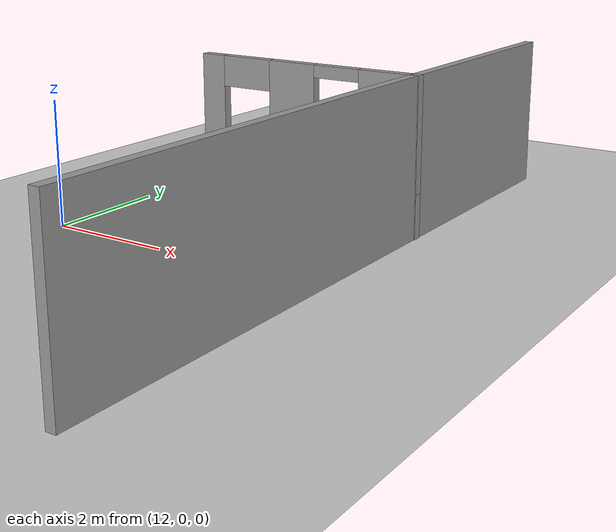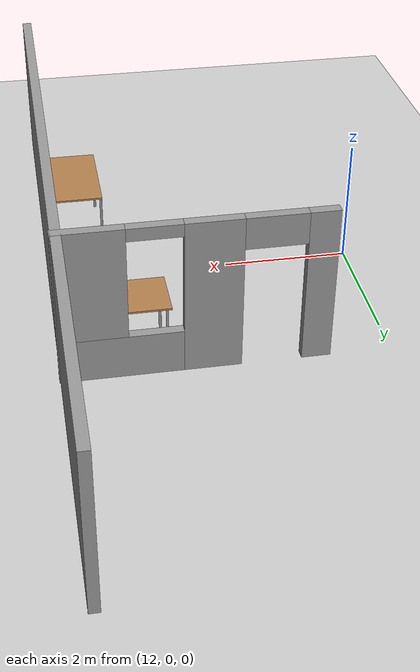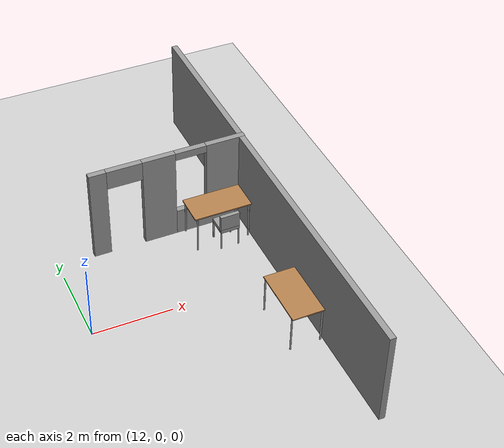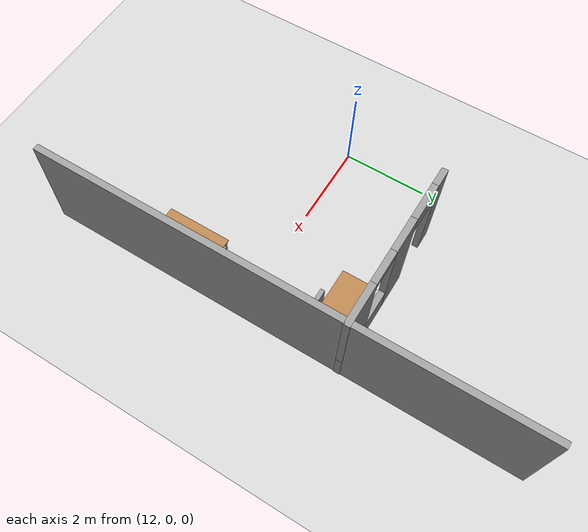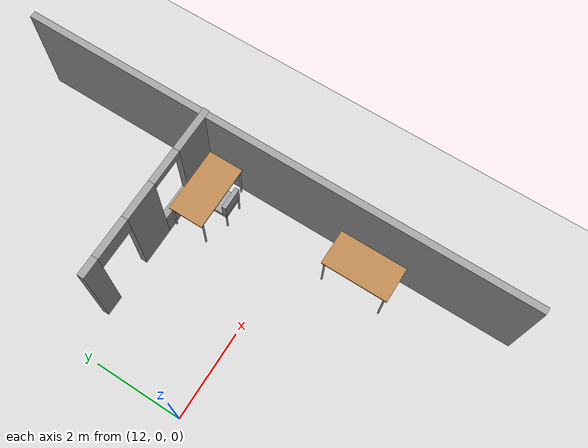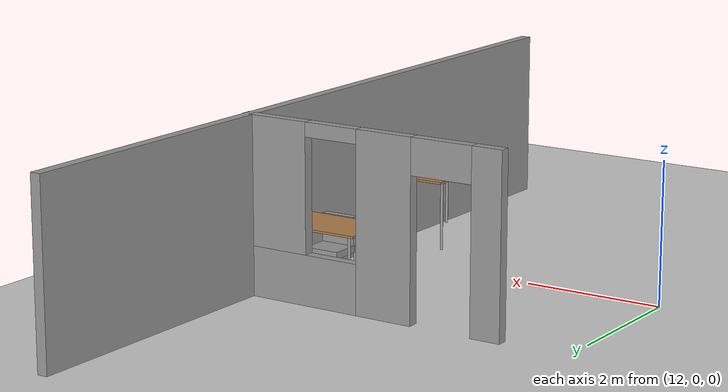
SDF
<sdf version="1.6">
 <world name="default">
  <model name="ground_plane">
   <static>1</static>
   <link name="link">
    <collision name="collision">
     <geometry><plane><normal>0 0 1</normal><size>100 100</size></plane></geometry>
     <surface>
      <contact><collide_bitmask>65535</collide_bitmask></contact>
      <friction><ode><mu>100</mu><mu2>50</mu2></ode></friction>
     </surface>
    </collision>
    <visual name="visual">
     <cast_shadows>0</cast_shadows>
     <geometry><plane><normal>0 0 1</normal><size>100 100</size></plane></geometry>
     <material>
      <script><uri>file://media/materials/scripts/gazebo.material</uri><name>Gazebo/Grey</name></script>
     </material>
    </visual>
   </link>
  </model>
  <model name="dunder_mifflin_scranton_full">
   <pose>4.5312 0.479645 0 0 -0 0</pose>
   <link name="Wall_39">
    <pose>10.4071 2.02176 0 0 -0 0</pose>
    <visual name="Wall_39_Visual_0">
     <pose>-1.78157 0 1.25 0 -0 0</pose>
     <geometry><box><size>0.436869 0.15 2.5</size></box></geometry>
     <material>
      <script><uri>file://media/materials/scripts/gazebo.material</uri><name>Gazebo/Grey</name></script>
      <ambient>0.423529 0.423529 0.423529 1</ambient>
     </material>
     <meta><layer>0</layer></meta>
    </visual>
    <collision name="Wall_39_Collision_0">
     <geometry><box><size>0.436869 0.15 2.5</size></box></geometry>
     <pose>-1.78157 0 1.25 0 -0 0</pose>
    </collision>
    <visual name="Wall_39_Visual_1">
     <pose>-0.241405 0 1.25 0 -0 0</pose>
     <geometry><box><size>0.843451 0.15 2.5</size></box></geometry>
     <material>
      <script><uri>file://media/materials/scripts/gazebo.material</uri><name>Gazebo/Grey</name></script>
      <ambient>0.423529 0.423529 0.423529 1</ambient>
     </material>
     <meta><layer>0</layer></meta>
    </visual>
    <collision name="Wall_39_Collision_1">
     <geometry><box><size>0.843451 0.15 2.5</size></box></geometry>
     <pose>-0.241405 0 1.25 0 -0 0</pose>
    </collision>
    <visual name="Wall_39_Visual_2">
     <pose>1.09016 0 0.35 0 -0 0</pose>
     <geometry><box><size>1.81968 0.15 0.7</size></box></geometry>
     <material>
      <script><uri>file://media/materials/scripts/gazebo.material</uri><name>Gazebo/Grey</name></script>
      <ambient>0.423529 0.423529 0.423529 1</ambient>
     </material>
     <meta><layer>0</layer></meta>
    </visual>
    <collision name="Wall_39_Collision_2">
     <geometry><box><size>1.81968 0.15 0.7</size></box></geometry>
     <pose>1.09016 0 0.35 0 -0 0</pose>
    </collision>
    <visual name="Wall_39_Visual_3">
     <pose>1.49016 0 1.6 0 -0 0</pose>
     <geometry><box><size>1.01968 0.15 1.8</size></box></geometry>
     <material>
      <script><uri>file://media/materials/scripts/gazebo.material</uri><name>Gazebo/Grey</name></script>
      <ambient>0.423529 0.423529 0.423529 1</ambient>
     </material>
     <meta><layer>0</layer></meta>
    </visual>
    <collision name="Wall_39_Collision_3">
     <geometry><box><size>1.01968 0.15 1.8</size></box></geometry>
     <pose>1.49016 0 1.6 0 -0 0</pose>
    </collision>
    <visual name="Wall_39_Visual_4">
     <pose>-1.11313 0 2.25 0 -0 0</pose>
     <geometry><box><size>0.9 0.15 0.5</size></box></geometry>
     <material>
      <script><uri>file://media/materials/scripts/gazebo.material</uri><name>Gazebo/Grey</name></script>
      <ambient>0.423529 0.423529 0.423529 1</ambient>
     </material>
     <meta><layer>0</layer></meta>
    </visual>
    <collision name="Wall_39_Collision_4">
     <geometry><box><size>0.9 0.15 0.5</size></box></geometry>
     <pose>-1.11313 0 2.25 0 -0 0</pose>
    </collision>
    <visual name="Wall_39_Visual_5">
     <pose>0.58032 0 2.4 0 -0 0</pose>
     <geometry><box><size>0.8 0.15 0.2</size></box></geometry>
     <material>
      <script><uri>file://media/materials/scripts/gazebo.material</uri><name>Gazebo/Grey</name></script>
      <ambient>0.423529 0.423529 0.423529 1</ambient>
     </material>
     <meta><layer>0</layer></meta>
    </visual>
    <collision name="Wall_39_Collision_5">
     <geometry><box><size>0.8 0.15 0.2</size></box></geometry>
     <pose>0.58032 0 2.4 0 -0 0</pose>
    </collision>
   </link>
   <link name="Wall_7">
    <collision name="Wall_7_Collision">
     <geometry><box><size>11.5 0.15 2.5</size></box></geometry>
     <pose>0 0 1.25 0 -0 0</pose>
    </collision>
    <visual name="Wall_7_Visual">
     <pose>0 0 1.25 0 -0 0</pose>
     <geometry><box><size>11.5 0.15 2.5</size></box></geometry>
     <material>
      <script><uri>file://media/materials/scripts/gazebo.material</uri><name>Gazebo/Grey</name></script>
      <ambient>1 1 1 1</ambient>
     </material>
     <meta><layer>0</layer></meta>
    </visual>
    <pose>12.3179 0.475 0 0 -0 -1.5708</pose>
   </link>
   <static>1</static>
  </model>
  <model name="table_15">
   <static>1</static>
   <link name="link">
    <collision name="surface">
     <pose>0 0 1 0 -0 0</pose>
     <geometry><box><size>1.5 0.8 0.03</size></box></geometry>
     <surface><friction><ode><mu>0.6</mu><mu2>0.6</mu2></ode></friction></surface>
    </collision>
    <visual name="visual1">
     <pose>0 0 1 0 -0 0</pose>
     <geometry><box><size>1.5 0.8 0.03</size></box></geometry>
     <material>
      <script><uri>file://media/materials/scripts/gazebo.material</uri><name>Gazebo/Wood</name></script>
     </material>
    </visual>
    <collision name="front_left_leg">
     <pose>0.68 0.38 0.5 0 -0 0</pose>
     <geometry><cylinder><radius>0.02</radius><length>1</length></cylinder></geometry>
    </collision>
    <visual name="front_left_leg">
     <pose>0.68 0.38 0.5 0 -0 0</pose>
     <geometry><cylinder><radius>0.02</radius><length>1</length></cylinder></geometry>
     <material>
      <script><uri>file://media/materials/scripts/gazebo.material</uri><name>Gazebo/Grey</name></script>
     </material>
    </visual>
    <collision name="front_right_leg">
     <pose>0.68 -0.38 0.5 0 -0 0</pose>
     <geometry><cylinder><radius>0.02</radius><length>1</length></cylinder></geometry>
    </collision>
    <visual name="front_right_leg">
     <pose>0.68 -0.38 0.5 0 -0 0</pose>
     <geometry><cylinder><radius>0.02</radius><length>1</length></cylinder></geometry>
     <material>
      <script><uri>file://media/materials/scripts/gazebo.material</uri><name>Gazebo/Grey</name></script>
     </material>
    </visual>
    <collision name="back_right_leg">
     <pose>-0.68 -0.38 0.5 0 -0 0</pose>
     <geometry><cylinder><radius>0.02</radius><length>1</length></cylinder></geometry>
    </collision>
    <visual name="back_right_leg">
     <pose>-0.68 -0.38 0.5 0 -0 0</pose>
     <geometry><cylinder><radius>0.02</radius><length>1</length></cylinder></geometry>
     <material>
      <script><uri>file://media/materials/scripts/gazebo.material</uri><name>Gazebo/Grey</name></script>
     </material>
    </visual>
    <collision name="back_left_leg">
     <pose>-0.68 0.38 0.5 0 -0 0</pose>
     <geometry><cylinder><radius>0.02</radius><length>1</length></cylinder></geometry>
    </collision>
    <visual name="back_left_leg">
     <pose>-0.68 0.38 0.5 0 -0 0</pose>
     <geometry><cylinder><radius>0.02</radius><length>1</length></cylinder></geometry>
     <material>
      <script><uri>file://media/materials/scripts/gazebo.material</uri><name>Gazebo/Grey</name></script>
     </material>
    </visual>
   </link>
   <pose>16.3327 -1.54177 0 0 0 -1.5708</pose>
  </model>
  <model name="table_16">
   <static>1</static>
   <link name="link">
    <collision name="surface">
     <pose>0 0 1 0 -0 0</pose>
     <geometry><box><size>1.5 0.8 0.03</size></box></geometry>
     <surface><friction><ode><mu>0.6</mu><mu2>0.6</mu2></ode></friction></surface>
    </collision>
    <visual name="visual1">
     <pose>0 0 1 0 -0 0</pose>
     <geometry><box><size>1.5 0.8 0.03</size></box></geometry>
     <material>
      <script><uri>file://media/materials/scripts/gazebo.material</uri><name>Gazebo/Wood</name></script>
     </material>
    </visual>
    <collision name="front_left_leg">
     <pose>0.68 0.38 0.5 0 -0 0</pose>
     <geometry><cylinder><radius>0.02</radius><length>1</length></cylinder></geometry>
    </collision>
    <visual name="front_left_leg">
     <pose>0.68 0.38 0.5 0 -0 0</pose>
     <geometry><cylinder><radius>0.02</radius><length>1</length></cylinder></geometry>
     <material>
      <script><uri>file://media/materials/scripts/gazebo.material</uri><name>Gazebo/Grey</name></script>
     </material>
    </visual>
    <collision name="front_right_leg">
     <pose>0.68 -0.38 0.5 0 -0 0</pose>
     <geometry><cylinder><radius>0.02</radius><length>1</length></cylinder></geometry>
    </collision>
    <visual name="front_right_leg">
     <pose>0.68 -0.38 0.5 0 -0 0</pose>
     <geometry><cylinder><radius>0.02</radius><length>1</length></cylinder></geometry>
     <material>
      <script><uri>file://media/materials/scripts/gazebo.material</uri><name>Gazebo/Grey</name></script>
     </material>
    </visual>
    <collision name="back_right_leg">
     <pose>-0.68 -0.38 0.5 0 -0 0</pose>
     <geometry><cylinder><radius>0.02</radius><length>1</length></cylinder></geometry>
    </collision>
    <visual name="back_right_leg">
     <pose>-0.68 -0.38 0.5 0 -0 0</pose>
     <geometry><cylinder><radius>0.02</radius><length>1</length></cylinder></geometry>
     <material>
      <script><uri>file://media/materials/scripts/gazebo.material</uri><name>Gazebo/Grey</name></script>
     </material>
    </visual>
    <collision name="back_left_leg">
     <pose>-0.68 0.38 0.5 0 -0 0</pose>
     <geometry><cylinder><radius>0.02</radius><length>1</length></cylinder></geometry>
    </collision>
    <visual name="back_left_leg">
     <pose>-0.68 0.38 0.5 0 -0 0</pose>
     <geometry><cylinder><radius>0.02</radius><length>1</length></cylinder></geometry>
     <material>
      <script><uri>file://media/materials/scripts/gazebo.material</uri><name>Gazebo/Grey</name></script>
     </material>
    </visual>
   </link>
   <pose>16.0217 2.02215 0 0 -0 0</pose>
  </model>
  <model name="chair_17">
   <link name="link_0">
    <inertial>
     <mass>1</mass>
     <inertia><ixx>0.145833</ixx><ixy>0</ixy><ixz>0</ixz><iyy>0.145833</iyy><iyz>0</iyz><izz>0.125</izz></inertia>
    </inertial>
    <pose>-0.23 -0.19667 -0.280001 0 -0 0</pose>
    <visual name="visual">
     <geometry><cylinder><radius>0.02</radius><length>0.5</length></cylinder></geometry>
     <material>
      <lighting>1</lighting>
      <script><uri>file://media/materials/scripts/gazebo.material</uri><name>Gazebo/Grey</name></script>
      <shader type="vertex"><normal_map>__default__</normal_map></shader>
      <ambient>0.3 0.3 0.3 1</ambient>
      <diffuse>0.7 0.7 0.7 1</diffuse>
      <specular>0.01 0.01 0.01 1</specular>
      <emissive>0 0 0 1</emissive>
     </material>
    </visual>
    <collision name="collision">
     <geometry><cylinder><radius>0.02</radius><length>0.5</length></cylinder></geometry>
     <surface>
      <friction>
       <ode><mu>1</mu><mu2>1</mu2><fdir1>0 0 0</fdir1><slip1>0</slip1><slip2>0</slip2></ode>
       <torsional>
        <coefficient>1</coefficient>
        <patch_radius>0</patch_radius>
        <surface_radius>0</surface_radius>
        <use_patch_radius>1</use_patch_radius>
        <ode><slip>0</slip></ode>
       </torsional>
      </friction>
      <bounce><restitution_coefficient>0</restitution_coefficient><threshold>1e+06</threshold></bounce>
      <contact>
       <collide_without_contact>0</collide_without_contact>
       <collide_without_contact_bitmask>1</collide_without_contact_bitmask>
       <collide_bitmask>1</collide_bitmask>
       <ode>
        <soft_cfm>0</soft_cfm>
        <soft_erp>0.2</soft_erp>
        <kp>1e+13</kp>
        <kd>1</kd>
        <max_vel>0.01</max_vel>
        <min_depth>0</min_depth>
       </ode>
       <bullet>
        <split_impulse>1</split_impulse>
        <split_impulse_penetration_threshold>-0.01</split_impulse_penetration_threshold>
        <soft_cfm>0</soft_cfm>
        <soft_erp>0.2</soft_erp>
        <kp>1e+13</kp>
        <kd>1</kd>
       </bullet>
      </contact>
     </surface>
    </collision>
   </link>
   <link name="link_0_clone">
    <inertial>
     <mass>1</mass>
     <inertia><ixx>0.145833</ixx><ixy>0</ixy><ixz>0</ixz><iyy>0.145833</iyy><iyz>0</iyz><izz>0.125</izz></inertia>
    </inertial>
    <pose>0.23 -0.19667 -0.280001 0 -0 0</pose>
    <visual name="visual">
     <geometry><cylinder><radius>0.02</radius><length>0.5</length></cylinder></geometry>
     <material>
      <lighting>1</lighting>
      <script><uri>file://media/materials/scripts/gazebo.material</uri><name>Gazebo/Grey</name></script>
      <shader type="vertex"><normal_map>__default__</normal_map></shader>
      <ambient>0.3 0.3 0.3 1</ambient>
      <diffuse>0.7 0.7 0.7 1</diffuse>
      <specular>0.01 0.01 0.01 1</specular>
      <emissive>0 0 0 1</emissive>
     </material>
    </visual>
    <collision name="collision">
     <geometry><cylinder><radius>0.02</radius><length>0.5</length></cylinder></geometry>
     <surface>
      <friction>
       <ode><mu>1</mu><mu2>1</mu2><fdir1>0 0 0</fdir1><slip1>0</slip1><slip2>0</slip2></ode>
       <torsional>
        <coefficient>1</coefficient>
        <patch_radius>0</patch_radius>
        <surface_radius>0</surface_radius>
        <use_patch_radius>1</use_patch_radius>
        <ode><slip>0</slip></ode>
       </torsional>
      </friction>
      <bounce><restitution_coefficient>0</restitution_coefficient><threshold>1e+06</threshold></bounce>
      <contact>
       <collide_without_contact>0</collide_without_contact>
       <collide_without_contact_bitmask>1</collide_without_contact_bitmask>
       <collide_bitmask>1</collide_bitmask>
       <ode>
        <soft_cfm>0</soft_cfm>
        <soft_erp>0.2</soft_erp>
        <kp>1e+13</kp>
        <kd>1</kd>
        <max_vel>0.01</max_vel>
        <min_depth>0</min_depth>
       </ode>
       <bullet>
        <split_impulse>1</split_impulse>
        <split_impulse_penetration_threshold>-0.01</split_impulse_penetration_threshold>
        <soft_cfm>0</soft_cfm>
        <soft_erp>0.2</soft_erp>
        <kp>1e+13</kp>
        <kd>1</kd>
       </bullet>
      </contact>
     </surface>
    </collision>
   </link>
   <link name="link_0_clone_0">
    <inertial>
     <mass>1</mass>
     <inertia><ixx>0.145833</ixx><ixy>0</ixy><ixz>0</ixz><iyy>0.145833</iyy><iyz>0</iyz><izz>0.125</izz></inertia>
    </inertial>
    <pose>0.23 0.26333 -0.280001 0 -0 0</pose>
    <visual name="visual">
     <geometry><cylinder><radius>0.02</radius><length>0.5</length></cylinder></geometry>
     <material>
      <lighting>1</lighting>
      <script><uri>file://media/materials/scripts/gazebo.material</uri><name>Gazebo/Grey</name></script>
      <shader type="vertex"><normal_map>__default__</normal_map></shader>
      <ambient>0.3 0.3 0.3 1</ambient>
      <diffuse>0.7 0.7 0.7 1</diffuse>
      <specular>0.01 0.01 0.01 1</specular>
      <emissive>0 0 0 1</emissive>
     </material>
    </visual>
    <collision name="collision">
     <geometry><cylinder><radius>0.02</radius><length>0.5</length></cylinder></geometry>
     <surface>
      <friction>
       <ode><mu>1</mu><mu2>1</mu2><fdir1>0 0 0</fdir1><slip1>0</slip1><slip2>0</slip2></ode>
       <torsional>
        <coefficient>1</coefficient>
        <patch_radius>0</patch_radius>
        <surface_radius>0</surface_radius>
        <use_patch_radius>1</use_patch_radius>
        <ode><slip>0</slip></ode>
       </torsional>
      </friction>
      <bounce><restitution_coefficient>0</restitution_coefficient><threshold>1e+06</threshold></bounce>
      <contact>
       <collide_without_contact>0</collide_without_contact>
       <collide_without_contact_bitmask>1</collide_without_contact_bitmask>
       <collide_bitmask>1</collide_bitmask>
       <ode>
        <soft_cfm>0</soft_cfm>
        <soft_erp>0.2</soft_erp>
        <kp>1e+13</kp>
        <kd>1</kd>
        <max_vel>0.01</max_vel>
        <min_depth>0</min_depth>
       </ode>
       <bullet>
        <split_impulse>1</split_impulse>
        <split_impulse_penetration_threshold>-0.01</split_impulse_penetration_threshold>
        <soft_cfm>0</soft_cfm>
        <soft_erp>0.2</soft_erp>
        <kp>1e+13</kp>
        <kd>1</kd>
       </bullet>
      </contact>
     </surface>
    </collision>
   </link>
   <link name="link_0_clone_1">
    <inertial>
     <mass>1</mass>
     <inertia><ixx>0.145833</ixx><ixy>0</ixy><ixz>0</ixz><iyy>0.145833</iyy><iyz>0</iyz><izz>0.125</izz></inertia>
    </inertial>
    <pose>-0.23 0.26333 -0.280001 0 -0 0</pose>
    <visual name="visual">
     <geometry><cylinder><radius>0.02</radius><length>0.5</length></cylinder></geometry>
     <material>
      <lighting>1</lighting>
      <script><uri>file://media/materials/scripts/gazebo.material</uri><name>Gazebo/Grey</name></script>
      <shader type="vertex"><normal_map>__default__</normal_map></shader>
      <ambient>0.3 0.3 0.3 1</ambient>
      <diffuse>0.7 0.7 0.7 1</diffuse>
      <specular>0.01 0.01 0.01 1</specular>
      <emissive>0 0 0 1</emissive>
     </material>
    </visual>
    <collision name="collision">
     <geometry><cylinder><radius>0.02</radius><length>0.5</length></cylinder></geometry>
     <surface>
      <friction>
       <ode><mu>1</mu><mu2>1</mu2><fdir1>0 0 0</fdir1><slip1>0</slip1><slip2>0</slip2></ode>
       <torsional>
        <coefficient>1</coefficient>
        <patch_radius>0</patch_radius>
        <surface_radius>0</surface_radius>
        <use_patch_radius>1</use_patch_radius>
        <ode><slip>0</slip></ode>
       </torsional>
      </friction>
      <bounce><restitution_coefficient>0</restitution_coefficient><threshold>1e+06</threshold></bounce>
      <contact>
       <collide_without_contact>0</collide_without_contact>
       <collide_without_contact_bitmask>1</collide_without_contact_bitmask>
       <collide_bitmask>1</collide_bitmask>
       <ode>
        <soft_cfm>0</soft_cfm>
        <soft_erp>0.2</soft_erp>
        <kp>1e+13</kp>
        <kd>1</kd>
        <max_vel>0.01</max_vel>
        <min_depth>0</min_depth>
       </ode>
       <bullet>
        <split_impulse>1</split_impulse>
        <split_impulse_penetration_threshold>-0.01</split_impulse_penetration_threshold>
        <soft_cfm>0</soft_cfm>
        <soft_erp>0.2</soft_erp>
        <kp>1e+13</kp>
        <kd>1</kd>
       </bullet>
      </contact>
     </surface>
    </collision>
   </link>
   <link name="link_2">
    <inertial>
     <mass>1</mass>
     <inertia>
      <ixx>0.166667</ixx>
      <ixy>0</ixy>
      <ixz>0</ixz>
      <iyy>0.166667</iyy>
      <iyz>0</iyz>
      <izz>0.166667</izz>
     </inertia>
    </inertial>
    <pose>0 0.03333 0.019999 0 -0 0</pose>
    <visual name="visual">
     <geometry><box><size>0.5 0.5 0.1</size></box></geometry>
     <material>
      <lighting>1</lighting>
      <script><uri>file://media/materials/scripts/gazebo.material</uri><name>Gazebo/Grey</name></script>
      <shader type="vertex"><normal_map>__default__</normal_map></shader>
      <ambient>0.3 0.3 0.3 1</ambient>
      <diffuse>0.7 0.7 0.7 1</diffuse>
      <specular>0.01 0.01 0.01 1</specular>
      <emissive>0 0 0 1</emissive>
     </material>
    </visual>
    <collision name="collision">
     <geometry><box><size>0.5 0.5 0.1</size></box></geometry>
     <surface>
      <friction>
       <ode><mu>1</mu><mu2>1</mu2><fdir1>0 0 0</fdir1><slip1>0</slip1><slip2>0</slip2></ode>
       <torsional>
        <coefficient>1</coefficient>
        <patch_radius>0</patch_radius>
        <surface_radius>0</surface_radius>
        <use_patch_radius>1</use_patch_radius>
        <ode><slip>0</slip></ode>
       </torsional>
      </friction>
      <bounce><restitution_coefficient>0</restitution_coefficient><threshold>1e+06</threshold></bounce>
      <contact>
       <collide_without_contact>0</collide_without_contact>
       <collide_without_contact_bitmask>1</collide_without_contact_bitmask>
       <collide_bitmask>1</collide_bitmask>
       <ode>
        <soft_cfm>0</soft_cfm>
        <soft_erp>0.2</soft_erp>
        <kp>1e+13</kp>
        <kd>1</kd>
        <max_vel>0.01</max_vel>
        <min_depth>0</min_depth>
       </ode>
       <bullet>
        <split_impulse>1</split_impulse>
        <split_impulse_penetration_threshold>-0.01</split_impulse_penetration_threshold>
        <soft_cfm>0</soft_cfm>
        <soft_erp>0.2</soft_erp>
        <kp>1e+13</kp>
        <kd>1</kd>
       </bullet>
      </contact>
     </surface>
    </collision>
   </link>
   <link name="link_2_clone">
    <inertial>
     <mass>1</mass>
     <inertia>
      <ixx>0.166667</ixx>
      <ixy>0</ixy>
      <ixz>0</ixz>
      <iyy>0.166667</iyy>
      <iyz>0</iyz>
      <izz>0.166667</izz>
     </inertia>
    </inertial>
    <pose>0 -0.166646 0.220004 1.5707 -0 0</pose>
    <visual name="visual">
     <geometry><box><size>0.5 0.5 0.1</size></box></geometry>
     <material>
      <lighting>1</lighting>
      <script><uri>file://media/materials/scripts/gazebo.material</uri><name>Gazebo/Grey</name></script>
      <shader type="vertex"><normal_map>__default__</normal_map></shader>
      <ambient>0.3 0.3 0.3 1</ambient>
      <diffuse>0.7 0.7 0.7 1</diffuse>
      <specular>0.01 0.01 0.01 1</specular>
      <emissive>0 0 0 1</emissive>
     </material>
    </visual>
    <collision name="collision">
     <geometry><box><size>0.5 0.5 0.1</size></box></geometry>
     <surface>
      <friction>
       <ode><mu>1</mu><mu2>1</mu2><fdir1>0 0 0</fdir1><slip1>0</slip1><slip2>0</slip2></ode>
       <torsional>
        <coefficient>1</coefficient>
        <patch_radius>0</patch_radius>
        <surface_radius>0</surface_radius>
        <use_patch_radius>1</use_patch_radius>
        <ode><slip>0</slip></ode>
       </torsional>
      </friction>
      <bounce><restitution_coefficient>0</restitution_coefficient><threshold>1e+06</threshold></bounce>
      <contact>
       <collide_without_contact>0</collide_without_contact>
       <collide_without_contact_bitmask>1</collide_without_contact_bitmask>
       <collide_bitmask>1</collide_bitmask>
       <ode>
        <soft_cfm>0</soft_cfm>
        <soft_erp>0.2</soft_erp>
        <kp>1e+13</kp>
        <kd>1</kd>
        <max_vel>0.01</max_vel>
        <min_depth>0</min_depth>
       </ode>
       <bullet>
        <split_impulse>1</split_impulse>
        <split_impulse_penetration_threshold>-0.01</split_impulse_penetration_threshold>
        <soft_cfm>0</soft_cfm>
        <soft_erp>0.2</soft_erp>
        <kp>1e+13</kp>
        <kd>1</kd>
       </bullet>
      </contact>
     </surface>
    </collision>
   </link>
   <joint name="link_0_clone_JOINT_2" type="fixed">
    <parent>link_2</parent>
    <child>link_0_clone</child>
    <physics>
     <ode><limit><cfm>0</cfm><erp>0.2</erp></limit><suspension><cfm>0</cfm><erp>0.2</erp></suspension></ode>
    </physics>
   </joint>
   <joint name="link_2_JOINT_1" type="fixed">
    <parent>link_2</parent>
    <child>link_0</child>
    <physics>
     <ode><limit><cfm>0</cfm><erp>0.2</erp></limit><suspension><cfm>0</cfm><erp>0.2</erp></suspension></ode>
    </physics>
   </joint>
   <joint name="link_2_JOINT_3" type="fixed">
    <parent>link_2</parent>
    <child>link_0_clone_0</child>
    <physics>
     <ode><limit><cfm>0</cfm><erp>0.2</erp></limit><suspension><cfm>0</cfm><erp>0.2</erp></suspension></ode>
    </physics>
   </joint>
   <joint name="link_2_JOINT_4" type="fixed">
    <parent>link_2</parent>
    <child>link_0_clone_1</child>
    <physics>
     <ode><limit><cfm>0</cfm><erp>0.2</erp></limit><suspension><cfm>0</cfm><erp>0.2</erp></suspension></ode>
    </physics>
   </joint>
   <joint name="link_2_JOINT_5" type="fixed">
    <parent>link_2</parent>
    <child>link_2_clone</child>
    <physics>
     <ode><limit><cfm>0</cfm><erp>0.2</erp></limit><suspension><cfm>0</cfm><erp>0.2</erp></suspension></ode>
    </physics>
   </joint>
   <static>0</static>
   <pose>16.1185 1.65624 0.529996 0 -0 0.011457</pose>
  </model>
 </world>
</sdf>
